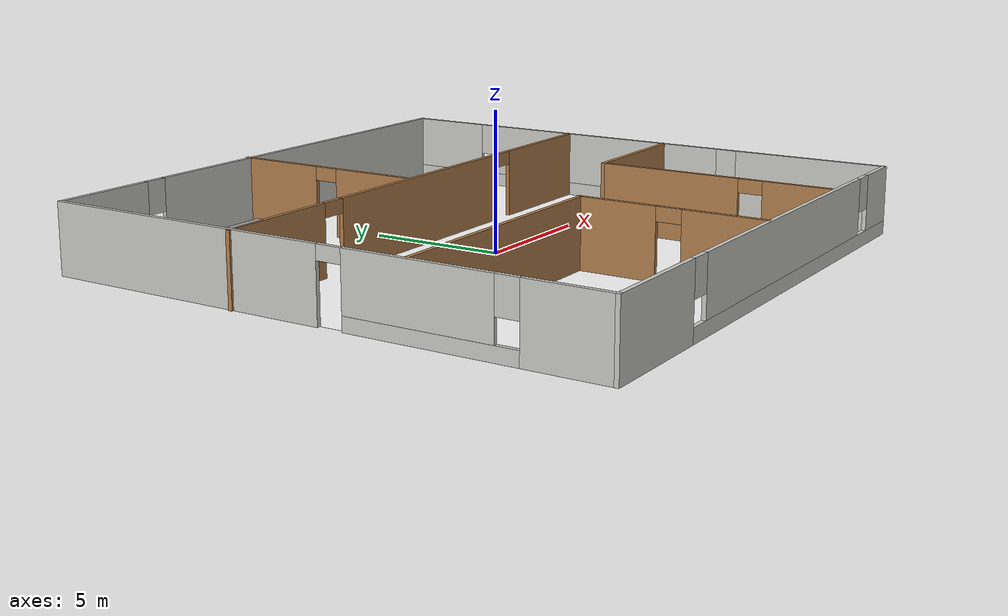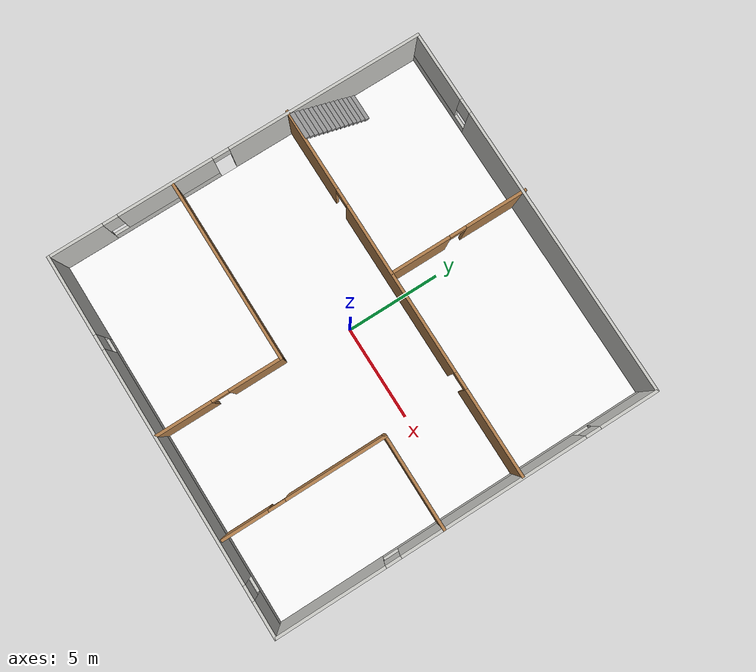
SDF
<sdf version="1.5">
 <world name="flat">
  <include><uri>model://sun</uri></include>
  <include><uri>model://ground_plane</uri><static>true</static></include>
  <include><uri>model://walls</uri></include>
  <model name="floor">
   <pose>0 0 0.02 0 0 0</pose>
   <static>true</static>
   <link name="link">
    <visual name="visual">
     <geometry><plane><normal>0 0 1</normal><size>20 20.5</size></plane></geometry>
     <material>
      <ambient>1 1 1 1</ambient>
      <diffuse>1 1 1 1</diffuse>
      <specular>0.1 0.1 0.1 1</specular>
      <emissive>0 0 0 0</emissive>
     </material>
    </visual>
    <collision name="collision">
     <geometry><plane><normal>0 0 1</normal><size>20 20.5</size></plane></geometry>
     <surface>
      <friction><ode><mu>100.0</mu><mu2>50.0</mu2></ode></friction>
      <bounce><restitution_coefficient>0.0</restitution_coefficient><threshold>1000000.0</threshold></bounce>
     </surface>
    </collision>
   </link>
  </model>
 </world>
</sdf>

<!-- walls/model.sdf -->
<sdf version='1.7'>
  <model name='roo'>
    <pose>-0.066378 0.051409 0 0 -0 0</pose>
    <link name='Stairs_0'>
      <visual name='Stairs_0_Visual_0'>
        <pose>-9.21396 6.34913 0.083333 0 -0 0</pose>
        <geometry>
          <box>
            <size>1.4219 0.24137 0.166667</size>
          </box>
        </geometry>
        <material>
          <script>
            <uri>file://media/materials/scripts/gazebo.material</uri>
            <name>Gazebo/Grey</name>
          </script>
          <ambient>1 1 1 1</ambient>
        </material>
        <meta>
          <layer>0</layer>
        </meta>
      </visual>
      <collision name='Stairs_0_Collision_0'>
        <geometry>
          <box>
            <size>1.4219 0.24137 0.166667</size>
          </box>
        </geometry>
        <pose>-9.21396 6.34913 0.083333 0 -0 0</pose>
      </collision>
      <visual name='Stairs_0_Visual_1'>
        <pose>-9.21396 6.10776 0.25 0 -0 0</pose>
        <geometry>
          <box>
            <size>1.4219 0.24137 0.166667</size>
          </box>
        </geometry>
        <material>
          <script>
            <uri>file://media/materials/scripts/gazebo.material</uri>
            <name>Gazebo/Grey</name>
          </script>
          <ambient>1 1 1 1</ambient>
        </material>
        <meta>
          <layer>0</layer>
        </meta>
      </visual>
      <collision name='Stairs_0_Collision_1'>
        <geometry>
          <box>
            <size>1.4219 0.24137 0.166667</size>
          </box>
        </geometry>
        <pose>-9.21396 6.10776 0.25 0 -0 0</pose>
      </collision>
      <visual name='Stairs_0_Visual_2'>
        <pose>-9.21396 5.86639 0.416667 0 -0 0</pose>
        <geometry>
          <box>
            <size>1.4219 0.24137 0.166667</size>
          </box>
        </geometry>
        <material>
          <script>
            <uri>file://media/materials/scripts/gazebo.material</uri>
            <name>Gazebo/Grey</name>
          </script>
          <ambient>1 1 1 1</ambient>
        </material>
        <meta>
          <layer>0</layer>
        </meta>
      </visual>
      <collision name='Stairs_0_Collision_2'>
        <geometry>
          <box>
            <size>1.4219 0.24137 0.166667</size>
          </box>
        </geometry>
        <pose>-9.21396 5.86639 0.416667 0 -0 0</pose>
      </collision>
      <visual name='Stairs_0_Visual_3'>
        <pose>-9.21396 5.62502 0.583333 0 -0 0</pose>
        <geometry>
          <box>
            <size>1.4219 0.24137 0.166667</size>
          </box>
        </geometry>
        <material>
          <script>
            <uri>file://media/materials/scripts/gazebo.material</uri>
            <name>Gazebo/Grey</name>
          </script>
          <ambient>1 1 1 1</ambient>
        </material>
        <meta>
          <layer>0</layer>
        </meta>
      </visual>
      <collision name='Stairs_0_Collision_3'>
        <geometry>
          <box>
            <size>1.4219 0.24137 0.166667</size>
          </box>
        </geometry>
        <pose>-9.21396 5.62502 0.583333 0 -0 0</pose>
      </collision>
      <visual name='Stairs_0_Visual_4'>
        <pose>-9.21396 5.38365 0.75 0 -0 0</pose>
        <geometry>
          <box>
            <size>1.4219 0.24137 0.166667</size>
          </box>
        </geometry>
        <material>
          <script>
            <uri>file://media/materials/scripts/gazebo.material</uri>
            <name>Gazebo/Grey</name>
          </script>
          <ambient>1 1 1 1</ambient>
        </material>
        <meta>
          <layer>0</layer>
        </meta>
      </visual>
      <collision name='Stairs_0_Collision_4'>
        <geometry>
          <box>
            <size>1.4219 0.24137 0.166667</size>
          </box>
        </geometry>
        <pose>-9.21396 5.38365 0.75 0 -0 0</pose>
      </collision>
      <visual name='Stairs_0_Visual_5'>
        <pose>-9.21396 5.14228 0.916667 0 -0 0</pose>
        <geometry>
          <box>
            <size>1.4219 0.24137 0.166667</size>
          </box>
        </geometry>
        <material>
          <script>
            <uri>file://media/materials/scripts/gazebo.material</uri>
            <name>Gazebo/Grey</name>
          </script>
          <ambient>1 1 1 1</ambient>
        </material>
        <meta>
          <layer>0</layer>
        </meta>
      </visual>
      <collision name='Stairs_0_Collision_5'>
        <geometry>
          <box>
            <size>1.4219 0.24137 0.166667</size>
          </box>
        </geometry>
        <pose>-9.21396 5.14228 0.916667 0 -0 0</pose>
      </collision>
      <visual name='Stairs_0_Visual_6'>
        <pose>-9.21396 4.90091 1.08333 0 -0 0</pose>
        <geometry>
          <box>
            <size>1.4219 0.24137 0.166667</size>
          </box>
        </geometry>
        <material>
          <script>
            <uri>file://media/materials/scripts/gazebo.material</uri>
            <name>Gazebo/Grey</name>
          </script>
          <ambient>1 1 1 1</ambient>
        </material>
        <meta>
          <layer>0</layer>
        </meta>
      </visual>
      <collision name='Stairs_0_Collision_6'>
        <geometry>
          <box>
            <size>1.4219 0.24137 0.166667</size>
          </box>
        </geometry>
        <pose>-9.21396 4.90091 1.08333 0 -0 0</pose>
      </collision>
      <visual name='Stairs_0_Visual_7'>
        <pose>-9.21396 4.65954 1.25 0 -0 0</pose>
        <geometry>
          <box>
            <size>1.4219 0.24137 0.166667</size>
          </box>
        </geometry>
        <material>
          <script>
            <uri>file://media/materials/scripts/gazebo.material</uri>
            <name>Gazebo/Grey</name>
          </script>
          <ambient>1 1 1 1</ambient>
        </material>
        <meta>
          <layer>0</layer>
        </meta>
      </visual>
      <collision name='Stairs_0_Collision_7'>
        <geometry>
          <box>
            <size>1.4219 0.24137 0.166667</size>
          </box>
        </geometry>
        <pose>-9.21396 4.65954 1.25 0 -0 0</pose>
      </collision>
      <visual name='Stairs_0_Visual_8'>
        <pose>-9.21396 4.41817 1.41667 0 -0 0</pose>
        <geometry>
          <box>
            <size>1.4219 0.24137 0.166667</size>
          </box>
        </geometry>
        <material>
          <script>
            <uri>file://media/materials/scripts/gazebo.material</uri>
            <name>Gazebo/Grey</name>
          </script>
          <ambient>1 1 1 1</ambient>
        </material>
        <meta>
          <layer>0</layer>
        </meta>
      </visual>
      <collision name='Stairs_0_Collision_8'>
        <geometry>
          <box>
            <size>1.4219 0.24137 0.166667</size>
          </box>
        </geometry>
        <pose>-9.21396 4.41817 1.41667 0 -0 0</pose>
      </collision>
      <visual name='Stairs_0_Visual_9'>
        <pose>-9.21396 4.1768 1.58333 0 -0 0</pose>
        <geometry>
          <box>
            <size>1.4219 0.24137 0.166667</size>
          </box>
        </geometry>
        <material>
          <script>
            <uri>file://media/materials/scripts/gazebo.material</uri>
            <name>Gazebo/Grey</name>
          </script>
          <ambient>1 1 1 1</ambient>
        </material>
        <meta>
          <layer>0</layer>
        </meta>
      </visual>
      <collision name='Stairs_0_Collision_9'>
        <geometry>
          <box>
            <size>1.4219 0.24137 0.166667</size>
          </box>
        </geometry>
        <pose>-9.21396 4.1768 1.58333 0 -0 0</pose>
      </collision>
      <visual name='Stairs_0_Visual_10'>
        <pose>-9.21396 3.93543 1.75 0 -0 0</pose>
        <geometry>
          <box>
            <size>1.4219 0.24137 0.166667</size>
          </box>
        </geometry>
        <material>
          <script>
            <uri>file://media/materials/scripts/gazebo.material</uri>
            <name>Gazebo/Grey</name>
          </script>
          <ambient>1 1 1 1</ambient>
        </material>
        <meta>
          <layer>0</layer>
        </meta>
      </visual>
      <collision name='Stairs_0_Collision_10'>
        <geometry>
          <box>
            <size>1.4219 0.24137 0.166667</size>
          </box>
        </geometry>
        <pose>-9.21396 3.93543 1.75 0 -0 0</pose>
      </collision>
      <visual name='Stairs_0_Visual_11'>
        <pose>-9.21396 3.69406 1.91667 0 -0 0</pose>
        <geometry>
          <box>
            <size>1.4219 0.24137 0.166667</size>
          </box>
        </geometry>
        <material>
          <script>
            <uri>file://media/materials/scripts/gazebo.material</uri>
            <name>Gazebo/Grey</name>
          </script>
          <ambient>1 1 1 1</ambient>
        </material>
        <meta>
          <layer>0</layer>
        </meta>
      </visual>
      <collision name='Stairs_0_Collision_11'>
        <geometry>
          <box>
            <size>1.4219 0.24137 0.166667</size>
          </box>
        </geometry>
        <pose>-9.21396 3.69406 1.91667 0 -0 0</pose>
      </collision>
      <visual name='Stairs_0_Visual_12'>
        <pose>-9.21396 3.45269 2.08333 0 -0 0</pose>
        <geometry>
          <box>
            <size>1.4219 0.24137 0.166667</size>
          </box>
        </geometry>
        <material>
          <script>
            <uri>file://media/materials/scripts/gazebo.material</uri>
            <name>Gazebo/Grey</name>
          </script>
          <ambient>1 1 1 1</ambient>
        </material>
        <meta>
          <layer>0</layer>
        </meta>
      </visual>
      <collision name='Stairs_0_Collision_12'>
        <geometry>
          <box>
            <size>1.4219 0.24137 0.166667</size>
          </box>
        </geometry>
        <pose>-9.21396 3.45269 2.08333 0 -0 0</pose>
      </collision>
      <visual name='Stairs_0_Visual_13'>
        <pose>-9.21396 3.21132 2.25 0 -0 0</pose>
        <geometry>
          <box>
            <size>1.4219 0.24137 0.166667</size>
          </box>
        </geometry>
        <material>
          <script>
            <uri>file://media/materials/scripts/gazebo.material</uri>
            <name>Gazebo/Grey</name>
          </script>
          <ambient>1 1 1 1</ambient>
        </material>
        <meta>
          <layer>0</layer>
        </meta>
      </visual>
      <collision name='Stairs_0_Collision_13'>
        <geometry>
          <box>
            <size>1.4219 0.24137 0.166667</size>
          </box>
        </geometry>
        <pose>-9.21396 3.21132 2.25 0 -0 0</pose>
      </collision>
      <visual name='Stairs_0_Visual_14'>
        <pose>-9.21396 2.96996 2.41667 0 -0 0</pose>
        <geometry>
          <box>
            <size>1.4219 0.24137 0.166667</size>
          </box>
        </geometry>
        <material>
          <script>
            <uri>file://media/materials/scripts/gazebo.material</uri>
            <name>Gazebo/Grey</name>
          </script>
          <ambient>1 1 1 1</ambient>
        </material>
        <meta>
          <layer>0</layer>
        </meta>
      </visual>
      <collision name='Stairs_0_Collision_14'>
        <geometry>
          <box>
            <size>1.4219 0.24137 0.166667</size>
          </box>
        </geometry>
        <pose>-9.21396 2.96996 2.41667 0 -0 0</pose>
      </collision>
    </link>
    <link name='Wall_1'>
      <collision name='Wall_1_Collision'>
        <geometry>
          <box>
            <size>9.75 0.15 2.5</size>
          </box>
        </geometry>
        <pose>0 0 1.25 0 -0 0</pose>
      </collision>
      <visual name='Wall_1_Visual'>
        <pose>0 0 1.25 0 -0 0</pose>
        <geometry>
          <box>
            <size>9.75 0.15 2.5</size>
          </box>
        </geometry>
        <material>
          <script>
            <uri>file://media/materials/scripts/gazebo.material</uri>
            <name>Gazebo/Wood</name>
          </script>
          <ambient>1 1 1 1</ambient>
        </material>
        <meta>
          <layer>0</layer>
        </meta>
      </visual>
      <pose>-5.09252 -3.56781 0 0 -0 3.14159</pose>
    </link>
    <link name='Wall_13'>
      <pose>0.033169 -10.2285 0 0 -0 0</pose>
      <visual name='Wall_13_Visual_0'>
        <pose>-7.95042 0 1.25 0 -0 0</pose>
        <geometry>
          <box>
            <size>4.34915 0.15 2.5</size>
          </box>
        </geometry>
        <material>
          <script>
            <uri>file://media/materials/scripts/gazebo.material</uri>
            <name>Gazebo/CeilingTiled</name>
          </script>
          <ambient>1 1 1 1</ambient>
        </material>
        <meta>
          <layer>0</layer>
        </meta>
      </visual>
      <collision name='Wall_13_Collision_0'>
        <geometry>
          <box>
            <size>4.34915 0.15 2.5</size>
          </box>
        </geometry>
        <pose>-7.95042 0 1.25 0 -0 0</pose>
      </collision>
      <visual name='Wall_13_Visual_1'>
        <pose>2.17458 0 0.25 0 -0 0</pose>
        <geometry>
          <box>
            <size>15.9008 0.15 0.5</size>
          </box>
        </geometry>
        <material>
          <script>
            <uri>file://media/materials/scripts/gazebo.material</uri>
            <name>Gazebo/CeilingTiled</name>
          </script>
          <ambient>1 1 1 1</ambient>
        </material>
        <meta>
          <layer>0</layer>
        </meta>
      </visual>
      <collision name='Wall_13_Collision_1'>
        <geometry>
          <box>
            <size>15.9008 0.15 0.5</size>
          </box>
        </geometry>
        <pose>2.17458 0 0.25 0 -0 0</pose>
      </collision>
      <visual name='Wall_13_Visual_2'>
        <pose>1.20122 0 1.5 0 -0 0</pose>
        <geometry>
          <box>
            <size>12.3541 0.15 2</size>
          </box>
        </geometry>
        <material>
          <script>
            <uri>file://media/materials/scripts/gazebo.material</uri>
            <name>Gazebo/CeilingTiled</name>
          </script>
          <ambient>1 1 1 1</ambient>
        </material>
        <meta>
          <layer>0</layer>
        </meta>
      </visual>
      <collision name='Wall_13_Collision_2'>
        <geometry>
          <box>
            <size>12.3541 0.15 2</size>
          </box>
        </geometry>
        <pose>1.20122 0 1.5 0 -0 0</pose>
      </collision>
      <visual name='Wall_13_Visual_3'>
        <pose>9.15165 0 1.5 0 -0 0</pose>
        <geometry>
          <box>
            <size>1.94671 0.15 2</size>
          </box>
        </geometry>
        <material>
          <script>
            <uri>file://media/materials/scripts/gazebo.material</uri>
            <name>Gazebo/CeilingTiled</name>
          </script>
          <ambient>1 1 1 1</ambient>
        </material>
        <meta>
          <layer>0</layer>
        </meta>
      </visual>
      <collision name='Wall_13_Collision_3'>
        <geometry>
          <box>
            <size>1.94671 0.15 2</size>
          </box>
        </geometry>
        <pose>9.15165 0 1.5 0 -0 0</pose>
      </collision>
      <visual name='Wall_13_Visual_4'>
        <pose>-5.37585 0 1.9 0 -0 0</pose>
        <geometry>
          <box>
            <size>0.8 0.15 1.2</size>
          </box>
        </geometry>
        <material>
          <script>
            <uri>file://media/materials/scripts/gazebo.material</uri>
            <name>Gazebo/CeilingTiled</name>
          </script>
          <ambient>1 1 1 1</ambient>
        </material>
        <meta>
          <layer>0</layer>
        </meta>
      </visual>
      <collision name='Wall_13_Collision_4'>
        <geometry>
          <box>
            <size>0.8 0.15 1.2</size>
          </box>
        </geometry>
        <pose>-5.37585 0 1.9 0 -0 0</pose>
      </collision>
      <visual name='Wall_13_Visual_5'>
        <pose>7.77829 0 1.9 0 -0 0</pose>
        <geometry>
          <box>
            <size>0.8 0.15 1.2</size>
          </box>
        </geometry>
        <material>
          <script>
            <uri>file://media/materials/scripts/gazebo.material</uri>
            <name>Gazebo/CeilingTiled</name>
          </script>
          <ambient>1 1 1 1</ambient>
        </material>
        <meta>
          <layer>0</layer>
        </meta>
      </visual>
      <collision name='Wall_13_Collision_5'>
        <geometry>
          <box>
            <size>0.8 0.15 1.2</size>
          </box>
        </geometry>
        <pose>7.77829 0 1.9 0 -0 0</pose>
      </collision>
    </link>
    <link name='Wall_14'>
      <pose>10.0832 -0.053477 0 0 -0 1.5708</pose>
      <visual name='Wall_14_Visual_0'>
        <pose>-7.3461 0 1.25 0 -0 0</pose>
        <geometry>
          <box>
            <size>5.80781 0.15 2.5</size>
          </box>
        </geometry>
        <material>
          <script>
            <uri>file://media/materials/scripts/gazebo.material</uri>
            <name>Gazebo/CeilingTiled</name>
          </script>
          <ambient>1 1 1 1</ambient>
        </material>
        <meta>
          <layer>0</layer>
        </meta>
      </visual>
      <collision name='Wall_14_Collision_0'>
        <geometry>
          <box>
            <size>5.80781 0.15 2.5</size>
          </box>
        </geometry>
        <pose>-7.3461 0 1.25 0 -0 0</pose>
      </collision>
      <visual name='Wall_14_Visual_1'>
        <pose>2.9039 0 0.25 0 -0 0</pose>
        <geometry>
          <box>
            <size>14.6922 0.15 0.5</size>
          </box>
        </geometry>
        <material>
          <script>
            <uri>file://media/materials/scripts/gazebo.material</uri>
            <name>Gazebo/CeilingTiled</name>
          </script>
          <ambient>1 1 1 1</ambient>
        </material>
        <meta>
          <layer>0</layer>
        </meta>
      </visual>
      <collision name='Wall_14_Collision_1'>
        <geometry>
          <box>
            <size>14.6922 0.15 0.5</size>
          </box>
        </geometry>
        <pose>2.9039 0 0.25 0 -0 0</pose>
      </collision>
      <visual name='Wall_14_Visual_2'>
        <pose>1.31227 0 1.5 0 -0 0</pose>
        <geometry>
          <box>
            <size>9.90892 0.15 2</size>
          </box>
        </geometry>
        <material>
          <script>
            <uri>file://media/materials/scripts/gazebo.material</uri>
            <name>Gazebo/CeilingTiled</name>
          </script>
          <ambient>1 1 1 1</ambient>
        </material>
        <meta>
          <layer>0</layer>
        </meta>
      </visual>
      <collision name='Wall_14_Collision_2'>
        <geometry>
          <box>
            <size>9.90892 0.15 2</size>
          </box>
        </geometry>
        <pose>1.31227 0 1.5 0 -0 0</pose>
      </collision>
      <visual name='Wall_14_Visual_3'>
        <pose>8.65837 0 1.5 0 -0 0</pose>
        <geometry>
          <box>
            <size>3.18327 0.15 2</size>
          </box>
        </geometry>
        <material>
          <script>
            <uri>file://media/materials/scripts/gazebo.material</uri>
            <name>Gazebo/CeilingTiled</name>
          </script>
          <ambient>1 1 1 1</ambient>
        </material>
        <meta>
          <layer>0</layer>
        </meta>
      </visual>
      <collision name='Wall_14_Collision_3'>
        <geometry>
          <box>
            <size>3.18327 0.15 2</size>
          </box>
        </geometry>
        <pose>8.65837 0 1.5 0 -0 0</pose>
      </collision>
      <visual name='Wall_14_Visual_4'>
        <pose>-4.04219 0 1.9 0 -0 0</pose>
        <geometry>
          <box>
            <size>0.8 0.15 1.2</size>
          </box>
        </geometry>
        <material>
          <script>
            <uri>file://media/materials/scripts/gazebo.material</uri>
            <name>Gazebo/CeilingTiled</name>
          </script>
          <ambient>1 1 1 1</ambient>
        </material>
        <meta>
          <layer>0</layer>
        </meta>
      </visual>
      <collision name='Wall_14_Collision_4'>
        <geometry>
          <box>
            <size>0.8 0.15 1.2</size>
          </box>
        </geometry>
        <pose>-4.04219 0 1.9 0 -0 0</pose>
      </collision>
      <visual name='Wall_14_Visual_5'>
        <pose>6.66673 0 1.9 0 -0 0</pose>
        <geometry>
          <box>
            <size>0.8 0.15 1.2</size>
          </box>
        </geometry>
        <material>
          <script>
            <uri>file://media/materials/scripts/gazebo.material</uri>
            <name>Gazebo/CeilingTiled</name>
          </script>
          <ambient>1 1 1 1</ambient>
        </material>
        <meta>
          <layer>0</layer>
        </meta>
      </visual>
      <collision name='Wall_14_Collision_5'>
        <geometry>
          <box>
            <size>0.8 0.15 1.2</size>
          </box>
        </geometry>
        <pose>6.66673 0 1.9 0 -0 0</pose>
      </collision>
    </link>
    <link name='Wall_15'>
      <pose>0.033169 10.1215 0 0 -0 -3.14159</pose>
      <visual name='Wall_15_Visual_0'>
        <pose>-2.33064 0 1.25 0 -0 0</pose>
        <geometry>
          <box>
            <size>15.5887 0.15 2.5</size>
          </box>
        </geometry>
        <material>
          <script>
            <uri>file://media/materials/scripts/gazebo.material</uri>
            <name>Gazebo/CeilingTiled</name>
          </script>
          <ambient>1 1 1 1</ambient>
        </material>
        <meta>
          <layer>0</layer>
        </meta>
      </visual>
      <collision name='Wall_15_Collision_0'>
        <geometry>
          <box>
            <size>15.5887 0.15 2.5</size>
          </box>
        </geometry>
        <pose>-2.33064 0 1.25 0 -0 0</pose>
      </collision>
      <visual name='Wall_15_Visual_1'>
        <pose>7.79436 0 0.25 0 -0 0</pose>
        <geometry>
          <box>
            <size>4.66128 0.15 0.5</size>
          </box>
        </geometry>
        <material>
          <script>
            <uri>file://media/materials/scripts/gazebo.material</uri>
            <name>Gazebo/CeilingTiled</name>
          </script>
          <ambient>1 1 1 1</ambient>
        </material>
        <meta>
          <layer>0</layer>
        </meta>
      </visual>
      <collision name='Wall_15_Collision_1'>
        <geometry>
          <box>
            <size>4.66128 0.15 0.5</size>
          </box>
        </geometry>
        <pose>7.79436 0 0.25 0 -0 0</pose>
      </collision>
      <visual name='Wall_15_Visual_2'>
        <pose>8.19436 0 1.5 0 -0 0</pose>
        <geometry>
          <box>
            <size>3.86128 0.15 2</size>
          </box>
        </geometry>
        <material>
          <script>
            <uri>file://media/materials/scripts/gazebo.material</uri>
            <name>Gazebo/CeilingTiled</name>
          </script>
          <ambient>1 1 1 1</ambient>
        </material>
        <meta>
          <layer>0</layer>
        </meta>
      </visual>
      <collision name='Wall_15_Collision_2'>
        <geometry>
          <box>
            <size>3.86128 0.15 2</size>
          </box>
        </geometry>
        <pose>8.19436 0 1.5 0 -0 0</pose>
      </collision>
      <visual name='Wall_15_Visual_3'>
        <pose>5.86372 0 1.9 0 -0 0</pose>
        <geometry>
          <box>
            <size>0.8 0.15 1.2</size>
          </box>
        </geometry>
        <material>
          <script>
            <uri>file://media/materials/scripts/gazebo.material</uri>
            <name>Gazebo/CeilingTiled</name>
          </script>
          <ambient>1 1 1 1</ambient>
        </material>
        <meta>
          <layer>0</layer>
        </meta>
      </visual>
      <collision name='Wall_15_Collision_3'>
        <geometry>
          <box>
            <size>0.8 0.15 1.2</size>
          </box>
        </geometry>
        <pose>5.86372 0 1.9 0 -0 0</pose>
      </collision>
    </link>
    <link name='Wall_17'>
      <pose>-0.292522 -6.86781 0 0 -0 -1.5708</pose>
      <visual name='Wall_17_Visual_0'>
        <pose>-1.93766 0 1.25 0 -0 0</pose>
        <geometry>
          <box>
            <size>2.87468 0.15 2.5</size>
          </box>
        </geometry>
        <material>
          <script>
            <uri>file://media/materials/scripts/gazebo.material</uri>
            <name>Gazebo/Wood</name>
          </script>
          <ambient>1 1 1 1</ambient>
        </material>
        <meta>
          <layer>0</layer>
        </meta>
      </visual>
      <collision name='Wall_17_Collision_0'>
        <geometry>
          <box>
            <size>2.87468 0.15 2.5</size>
          </box>
        </geometry>
        <pose>-1.93766 0 1.25 0 -0 0</pose>
      </collision>
      <visual name='Wall_17_Visual_1'>
        <pose>1.88734 0 1.25 0 -0 0</pose>
        <geometry>
          <box>
            <size>2.97532 0.15 2.5</size>
          </box>
        </geometry>
        <material>
          <script>
            <uri>file://media/materials/scripts/gazebo.material</uri>
            <name>Gazebo/Wood</name>
          </script>
          <ambient>1 1 1 1</ambient>
        </material>
        <meta>
          <layer>0</layer>
        </meta>
      </visual>
      <collision name='Wall_17_Collision_1'>
        <geometry>
          <box>
            <size>2.97532 0.15 2.5</size>
          </box>
        </geometry>
        <pose>1.88734 0 1.25 0 -0 0</pose>
      </collision>
      <visual name='Wall_17_Visual_2'>
        <pose>-0.050324 0 2.25 0 -0 0</pose>
        <geometry>
          <box>
            <size>0.9 0.15 0.5</size>
          </box>
        </geometry>
        <material>
          <script>
            <uri>file://media/materials/scripts/gazebo.material</uri>
            <name>Gazebo/Wood</name>
          </script>
          <ambient>1 1 1 1</ambient>
        </material>
        <meta>
          <layer>0</layer>
        </meta>
      </visual>
      <collision name='Wall_17_Collision_2'>
        <geometry>
          <box>
            <size>0.9 0.15 0.5</size>
          </box>
        </geometry>
        <pose>-0.050324 0 2.25 0 -0 0</pose>
      </collision>
    </link>
    <link name='Wall_20'>
      <pose>-0.039043 2.82607 0 0 -0 0</pose>
      <visual name='Wall_20_Visual_0'>
        <pose>-7.87541 0 1.25 0 -0 0</pose>
        <geometry>
          <box>
            <size>4.49919 0.15 2.5</size>
          </box>
        </geometry>
        <material>
          <script>
            <uri>file://media/materials/scripts/gazebo.material</uri>
            <name>Gazebo/Wood</name>
          </script>
          <ambient>1 1 1 1</ambient>
        </material>
        <meta>
          <layer>0</layer>
        </meta>
      </visual>
      <collision name='Wall_20_Collision_0'>
        <geometry>
          <box>
            <size>4.49919 0.15 2.5</size>
          </box>
        </geometry>
        <pose>-7.87541 0 1.25 0 -0 0</pose>
      </collision>
      <visual name='Wall_20_Visual_1'>
        <pose>-0.091983 0 1.25 0 -0 0</pose>
        <geometry>
          <box>
            <size>9.26766 0.15 2.5</size>
          </box>
        </geometry>
        <material>
          <script>
            <uri>file://media/materials/scripts/gazebo.material</uri>
            <name>Gazebo/Wood</name>
          </script>
          <ambient>1 1 1 1</ambient>
        </material>
        <meta>
          <layer>0</layer>
        </meta>
      </visual>
      <collision name='Wall_20_Collision_1'>
        <geometry>
          <box>
            <size>9.26766 0.15 2.5</size>
          </box>
        </geometry>
        <pose>-0.091983 0 1.25 0 -0 0</pose>
      </collision>
      <visual name='Wall_20_Visual_2'>
        <pose>7.78342 0 1.25 0 -0 0</pose>
        <geometry>
          <box>
            <size>4.68315 0.15 2.5</size>
          </box>
        </geometry>
        <material>
          <script>
            <uri>file://media/materials/scripts/gazebo.material</uri>
            <name>Gazebo/Wood</name>
          </script>
          <ambient>1 1 1 1</ambient>
        </material>
        <meta>
          <layer>0</layer>
        </meta>
      </visual>
      <collision name='Wall_20_Collision_2'>
        <geometry>
          <box>
            <size>4.68315 0.15 2.5</size>
          </box>
        </geometry>
        <pose>7.78342 0 1.25 0 -0 0</pose>
      </collision>
      <visual name='Wall_20_Visual_3'>
        <pose>-5.17581 0 2.25 0 -0 0</pose>
        <geometry>
          <box>
            <size>0.9 0.15 0.5</size>
          </box>
        </geometry>
        <material>
          <script>
            <uri>file://media/materials/scripts/gazebo.material</uri>
            <name>Gazebo/Wood</name>
          </script>
          <ambient>1 1 1 1</ambient>
        </material>
        <meta>
          <layer>0</layer>
        </meta>
      </visual>
      <collision name='Wall_20_Collision_3'>
        <geometry>
          <box>
            <size>0.9 0.15 0.5</size>
          </box>
        </geometry>
        <pose>-5.17581 0 2.25 0 -0 0</pose>
      </collision>
      <visual name='Wall_20_Visual_4'>
        <pose>4.99185 0 2.25 0 -0 0</pose>
        <geometry>
          <box>
            <size>0.9 0.15 0.5</size>
          </box>
        </geometry>
        <material>
          <script>
            <uri>file://media/materials/scripts/gazebo.material</uri>
            <name>Gazebo/Wood</name>
          </script>
          <ambient>1 1 1 1</ambient>
        </material>
        <meta>
          <layer>0</layer>
        </meta>
      </visual>
      <collision name='Wall_20_Collision_4'>
        <geometry>
          <box>
            <size>0.9 0.15 0.5</size>
          </box>
        </geometry>
        <pose>4.99185 0 2.25 0 -0 0</pose>
      </collision>
    </link>
    <link name='Wall_22'>
      <pose>-0.917186 6.55348 0 0 -0 1.5708</pose>
      <visual name='Wall_22_Visual_0'>
        <pose>-2.12933 0 1.25 0 -0 0</pose>
        <geometry>
          <box>
            <size>3.24133 0.15 2.5</size>
          </box>
        </geometry>
        <material>
          <script>
            <uri>file://media/materials/scripts/gazebo.material</uri>
            <name>Gazebo/Wood</name>
          </script>
          <ambient>1 1 1 1</ambient>
        </material>
        <meta>
          <layer>0</layer>
        </meta>
      </visual>
      <collision name='Wall_22_Collision_0'>
        <geometry>
          <box>
            <size>3.24133 0.15 2.5</size>
          </box>
        </geometry>
        <pose>-2.12933 0 1.25 0 -0 0</pose>
      </collision>
      <visual name='Wall_22_Visual_1'>
        <pose>2.07067 0 1.25 0 -0 0</pose>
        <geometry>
          <box>
            <size>3.35867 0.15 2.5</size>
          </box>
        </geometry>
        <material>
          <script>
            <uri>file://media/materials/scripts/gazebo.material</uri>
            <name>Gazebo/Wood</name>
          </script>
          <ambient>1 1 1 1</ambient>
        </material>
        <meta>
          <layer>0</layer>
        </meta>
      </visual>
      <collision name='Wall_22_Collision_1'>
        <geometry>
          <box>
            <size>3.35867 0.15 2.5</size>
          </box>
        </geometry>
        <pose>2.07067 0 1.25 0 -0 0</pose>
      </collision>
      <visual name='Wall_22_Visual_2'>
        <pose>-0.058668 0 2.25 0 -0 0</pose>
        <geometry>
          <box>
            <size>0.9 0.15 0.5</size>
          </box>
        </geometry>
        <material>
          <script>
            <uri>file://media/materials/scripts/gazebo.material</uri>
            <name>Gazebo/Wood</name>
          </script>
          <ambient>1 1 1 1</ambient>
        </material>
        <meta>
          <layer>0</layer>
        </meta>
      </visual>
      <collision name='Wall_22_Collision_2'>
        <geometry>
          <box>
            <size>0.9 0.15 0.5</size>
          </box>
        </geometry>
        <pose>-0.058668 0 2.25 0 -0 0</pose>
      </collision>
    </link>
    <link name='Wall_24'>
      <collision name='Wall_24_Collision'>
        <geometry>
          <box>
            <size>5 0.15 2.5</size>
          </box>
        </geometry>
        <pose>0 0 1.25 0 -0 0</pose>
      </collision>
      <visual name='Wall_24_Visual'>
        <pose>0 0 1.25 0 -0 0</pose>
        <geometry>
          <box>
            <size>5 0.15 2.5</size>
          </box>
        </geometry>
        <material>
          <script>
            <uri>file://media/materials/scripts/gazebo.material</uri>
            <name>Gazebo/Wood</name>
          </script>
          <ambient>1 1 1 1</ambient>
        </material>
        <meta>
          <layer>0</layer>
        </meta>
      </visual>
      <pose>7.66404 -1.41919 0 0 -0 3.14159</pose>
    </link>
    <link name='Wall_25'>
      <pose>5.23904 -5.71919 0 0 -0 -1.5708</pose>
      <visual name='Wall_25_Visual_0'>
        <pose>-1.67992 0 1.25 0 -0 0</pose>
        <geometry>
          <box>
            <size>5.39017 0.15 2.5</size>
          </box>
        </geometry>
        <material>
          <script>
            <uri>file://media/materials/scripts/gazebo.material</uri>
            <name>Gazebo/Wood</name>
          </script>
          <ambient>1 1 1 1</ambient>
        </material>
        <meta>
          <layer>0</layer>
        </meta>
      </visual>
      <collision name='Wall_25_Collision_0'>
        <geometry>
          <box>
            <size>5.39017 0.15 2.5</size>
          </box>
        </geometry>
        <pose>-1.67992 0 1.25 0 -0 0</pose>
      </collision>
      <visual name='Wall_25_Visual_1'>
        <pose>3.14508 0 1.25 0 -0 0</pose>
        <geometry>
          <box>
            <size>2.45983 0.15 2.5</size>
          </box>
        </geometry>
        <material>
          <script>
            <uri>file://media/materials/scripts/gazebo.material</uri>
            <name>Gazebo/Wood</name>
          </script>
          <ambient>1 1 1 1</ambient>
        </material>
        <meta>
          <layer>0</layer>
        </meta>
      </visual>
      <collision name='Wall_25_Collision_1'>
        <geometry>
          <box>
            <size>2.45983 0.15 2.5</size>
          </box>
        </geometry>
        <pose>3.14508 0 1.25 0 -0 0</pose>
      </collision>
      <visual name='Wall_25_Visual_2'>
        <pose>1.46517 0 2.25 0 -0 0</pose>
        <geometry>
          <box>
            <size>0.9 0.15 0.5</size>
          </box>
        </geometry>
        <material>
          <script>
            <uri>file://media/materials/scripts/gazebo.material</uri>
            <name>Gazebo/Wood</name>
          </script>
          <ambient>1 1 1 1</ambient>
        </material>
        <meta>
          <layer>0</layer>
        </meta>
      </visual>
      <collision name='Wall_25_Collision_2'>
        <geometry>
          <box>
            <size>0.9 0.15 0.5</size>
          </box>
        </geometry>
        <pose>1.46517 0 2.25 0 -0 0</pose>
      </collision>
    </link>
    <link name='Wall_4'>
      <pose>-10.0168 -0.053477 0 0 -0 1.5708</pose>
      <visual name='Wall_4_Visual_0'>
        <pose>-8.75738 0 1.25 0 -0 0</pose>
        <geometry>
          <box>
            <size>2.98524 0.15 2.5</size>
          </box>
        </geometry>
        <material>
          <script>
            <uri>file://media/materials/scripts/gazebo.material</uri>
            <name>Gazebo/CeilingTiled</name>
          </script>
          <ambient>1 1 1 1</ambient>
        </material>
        <meta>
          <layer>0</layer>
        </meta>
      </visual>
      <collision name='Wall_4_Collision_0'>
        <geometry>
          <box>
            <size>2.98524 0.15 2.5</size>
          </box>
        </geometry>
        <pose>-8.75738 0 1.25 0 -0 0</pose>
      </collision>
      <visual name='Wall_4_Visual_1'>
        <pose>4.92271 0 1.25 0 -0 0</pose>
        <geometry>
          <box>
            <size>10.6546 0.15 2.5</size>
          </box>
        </geometry>
        <material>
          <script>
            <uri>file://media/materials/scripts/gazebo.material</uri>
            <name>Gazebo/CeilingTiled</name>
          </script>
          <ambient>1 1 1 1</ambient>
        </material>
        <meta>
          <layer>0</layer>
        </meta>
      </visual>
      <collision name='Wall_4_Collision_1'>
        <geometry>
          <box>
            <size>10.6546 0.15 2.5</size>
          </box>
        </geometry>
        <pose>4.92271 0 1.25 0 -0 0</pose>
      </collision>
      <visual name='Wall_4_Visual_2'>
        <pose>-4.28467 0 0.25 0 -0 0</pose>
        <geometry>
          <box>
            <size>5.96017 0.15 0.5</size>
          </box>
        </geometry>
        <material>
          <script>
            <uri>file://media/materials/scripts/gazebo.material</uri>
            <name>Gazebo/CeilingTiled</name>
          </script>
          <ambient>1 1 1 1</ambient>
        </material>
        <meta>
          <layer>0</layer>
        </meta>
      </visual>
      <collision name='Wall_4_Collision_2'>
        <geometry>
          <box>
            <size>5.96017 0.15 0.5</size>
          </box>
        </geometry>
        <pose>-4.28467 0 0.25 0 -0 0</pose>
      </collision>
      <visual name='Wall_4_Visual_3'>
        <pose>-3.88467 0 1.5 0 -0 0</pose>
        <geometry>
          <box>
            <size>5.16017 0.15 2</size>
          </box>
        </geometry>
        <material>
          <script>
            <uri>file://media/materials/scripts/gazebo.material</uri>
            <name>Gazebo/CeilingTiled</name>
          </script>
          <ambient>1 1 1 1</ambient>
        </material>
        <meta>
          <layer>0</layer>
        </meta>
      </visual>
      <collision name='Wall_4_Collision_3'>
        <geometry>
          <box>
            <size>5.16017 0.15 2</size>
          </box>
        </geometry>
        <pose>-3.88467 0 1.5 0 -0 0</pose>
      </collision>
      <visual name='Wall_4_Visual_4'>
        <pose>-6.86476 0 1.9 0 -0 0</pose>
        <geometry>
          <box>
            <size>0.8 0.15 1.2</size>
          </box>
        </geometry>
        <material>
          <script>
            <uri>file://media/materials/scripts/gazebo.material</uri>
            <name>Gazebo/CeilingTiled</name>
          </script>
          <ambient>1 1 1 1</ambient>
        </material>
        <meta>
          <layer>0</layer>
        </meta>
      </visual>
      <collision name='Wall_4_Collision_4'>
        <geometry>
          <box>
            <size>0.8 0.15 1.2</size>
          </box>
        </geometry>
        <pose>-6.86476 0 1.9 0 -0 0</pose>
      </collision>
      <visual name='Wall_4_Visual_5'>
        <pose>-0.854586 0 2.25 0 -0 0</pose>
        <geometry>
          <box>
            <size>0.9 0.15 0.5</size>
          </box>
        </geometry>
        <material>
          <script>
            <uri>file://media/materials/scripts/gazebo.material</uri>
            <name>Gazebo/CeilingTiled</name>
          </script>
          <ambient>1 1 1 1</ambient>
        </material>
        <meta>
          <layer>0</layer>
        </meta>
      </visual>
      <collision name='Wall_4_Collision_5'>
        <geometry>
          <box>
            <size>0.9 0.15 0.5</size>
          </box>
        </geometry>
        <pose>-0.854586 0 2.25 0 -0 0</pose>
      </collision>
    </link>
    <static>1</static>
  </model>
</sdf>
